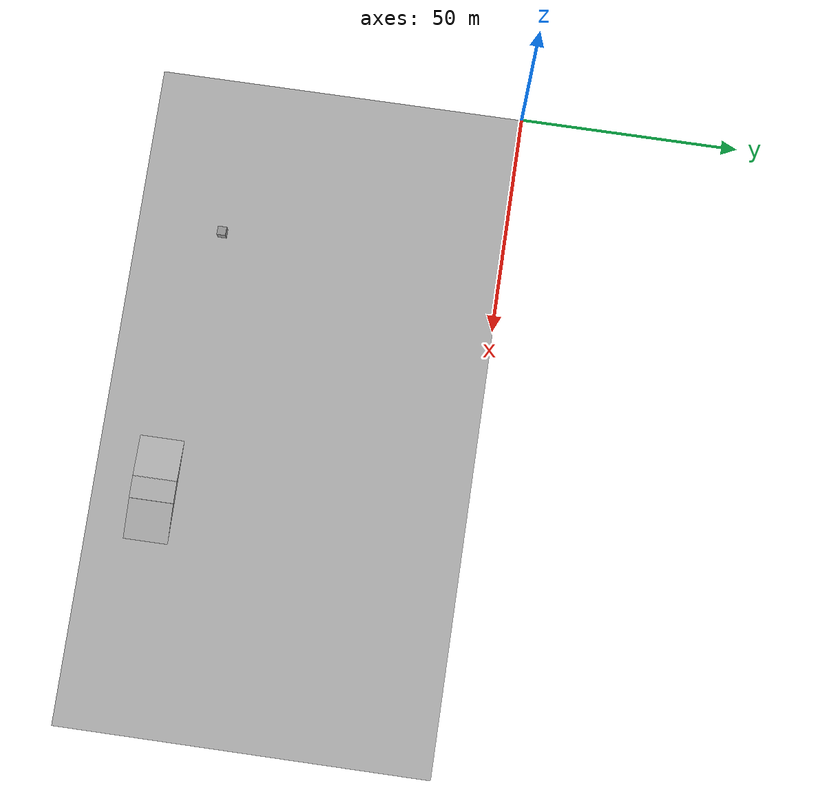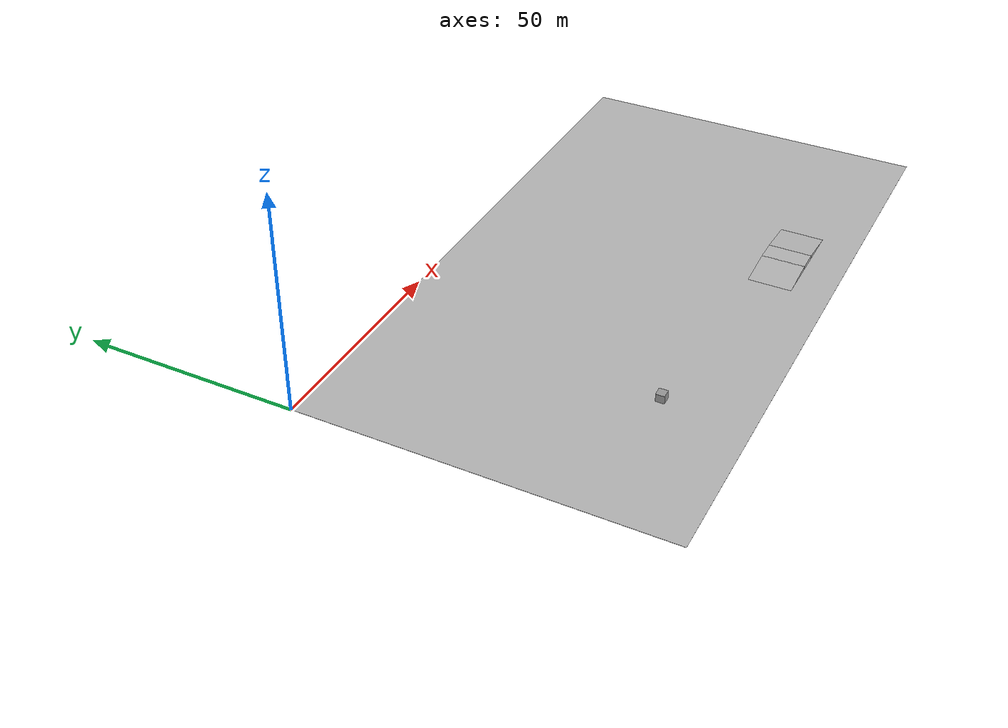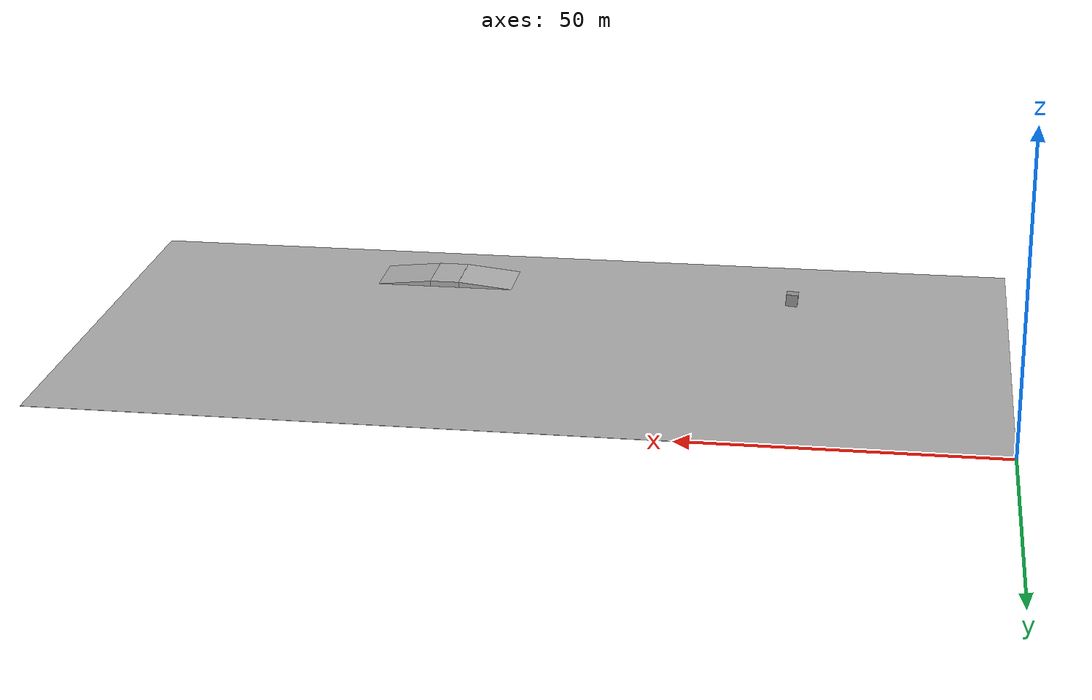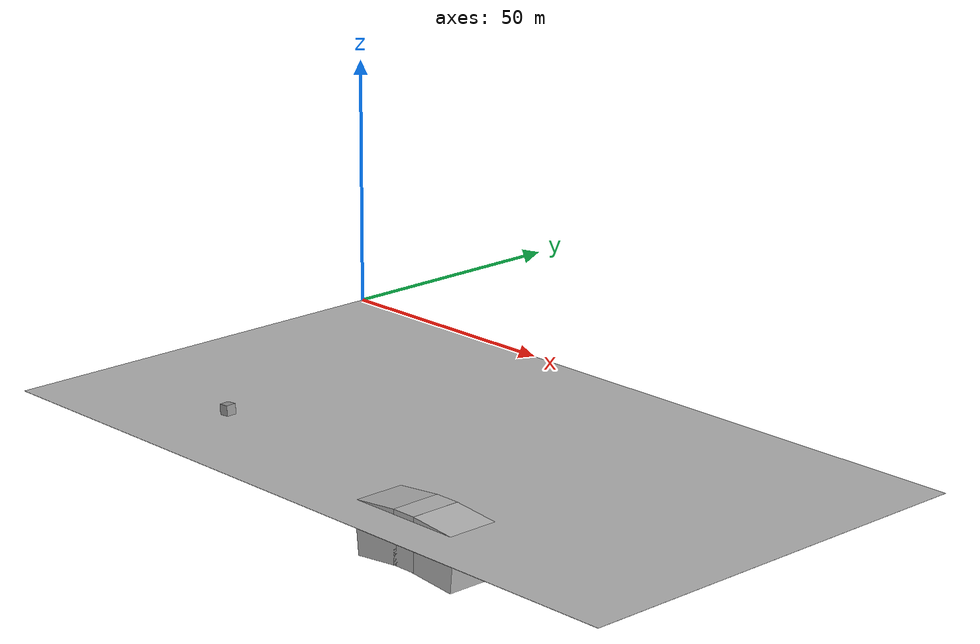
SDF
<sdf version="1.6">
 <world name="default">
  <model name="ground">
   <pose>75 -41.8 0 0 0 1.57</pose>
   <static>1</static>
   <link name="ground">
    <collision name="ground_coll"><geometry><box><size>83.6 150 0.05</size></box></geometry></collision>
    <visual name="ground_vis">
     <geometry><box><size>83.6 150  0.05</size></box></geometry>
     <material><script><uri>./course.material</uri><name>course</name></script></material>
    </visual>
   </link>
  </model>
  <include><uri>model://sun</uri></include>
  <model name="cube">
   <pose>35 -64 1 0 1.5 0</pose>
   <link name="link">
    <inertial>
     <mass>1</mass>
     <inertia>
      <ixx>0.166667</ixx>
      <ixy>0</ixy>
      <ixz>0</ixz>
      <iyy>0.166667</iyy>
      <iyz>0</iyz>
      <izz>0.166667</izz>
     </inertia>
    </inertial>
    <pose>0 -0 1 0 -0 0</pose>
    <visual name="visual">
     <geometry><box><size>2 2 2</size></box></geometry>
     <material>
      <script><name>Gazebo/Grey</name><uri>file://media/materials/scripts/gazebo.material</uri></script>
      <shader type="pixel"><normal_map>__default__</normal_map></shader>
      <ambient>0.3 0.3 0.3 1</ambient>
      <diffuse>0.7 0.7 0.7 1</diffuse>
      <specular>0.01 0.01 0.01 1</specular>
      <emissive>0 0 0 1</emissive>
     </material>
    </visual>
    <collision name="collision">
     <geometry><box><size>2 2 2</size></box></geometry>
     <surface>
      <friction>
       <ode><mu>0</mu><mu2>0</mu2><fdir1>0 0 0</fdir1><slip1>0</slip1><slip2>0</slip2></ode>
       <torsional>
        <coefficient>1</coefficient>
        <patch_radius>0</patch_radius>
        <surface_radius>0</surface_radius>
        <use_patch_radius>1</use_patch_radius>
        <ode><slip>0</slip></ode>
       </torsional>
      </friction>
      <bounce><restitution_coefficient>0</restitution_coefficient><threshold>1e+06</threshold></bounce>
      <contact>
       <collide_without_contact>0</collide_without_contact>
       <collide_without_contact_bitmask>1</collide_without_contact_bitmask>
       <collide_bitmask>1</collide_bitmask>
       <ode>
        <soft_cfm>0</soft_cfm>
        <soft_erp>0.2</soft_erp>
        <kp>1e+13</kp>
        <kd>1</kd>
        <max_vel>0.01</max_vel>
        <min_depth>0</min_depth>
       </ode>
       <bullet>
        <split_impulse>1</split_impulse>
        <split_impulse_penetration_threshold>-0.01</split_impulse_penetration_threshold>
        <soft_cfm>0</soft_cfm>
        <soft_erp>0.2</soft_erp>
        <kp>1e+13</kp>
        <kd>1</kd>
       </bullet>
      </contact>
     </surface>
    </collision>
   </link>
   <static>0</static>
   <plugin name="cube" filename="libgazebo_ros_planar_move.so">
    <ros>
     <namespace>CUBE</namespace>
     <remapping>cmd_vel:=cmd_demo</remapping>
     <odometryTopic>odom</odometryTopic>
     <odometryFrame>odom</odometryFrame>
     <odometryRate>20.0</odometryRate>
     <robotBaseFrame>base_footprint</robotBaseFrame>
    </ros>
   </plugin>
  </model>
  <model name="uphill">
   <pose>89.1 -70 -4.52 0 -0.1 0</pose>
   <static>true</static>
   <link name="link">
    <collision name="collision"><geometry><box><size>10 10 10</size></box></geometry></collision>
    <visual name="visual">
     <geometry><box><size>10 10 10</size></box></geometry>
     <material><script><uri>./hill2.material</uri><name>hill2</name></script></material>
    </visual>
   </link>
  </model>
  <model name="flat">
   <pose>96 -70 -4.05 0 0 0</pose>
   <static>true</static>
   <link name="link">
    <collision name="collision"><geometry><box><size>5 10 10</size></box></geometry></collision>
    <visual name="visual">
     <geometry><box><size>5 10 10</size></box></geometry>
     <material><script><uri>./hill.material</uri><name>hill</name></script></material>
    </visual>
   </link>
  </model>
  <model name="downhill">
   <pose>103 -70 -4.54 0 0.1 0</pose>
   <static>true</static>
   <link name="link">
    <collision name="collision"><geometry><box><size>10 10 10</size></box></geometry></collision>
    <visual name="visual">
     <geometry><box><size>10 10 10</size></box></geometry>
     <material><script><uri>./hill.material</uri><name>hill</name></script></material>
    </visual>
   </link>
  </model>
 </world>
</sdf>
